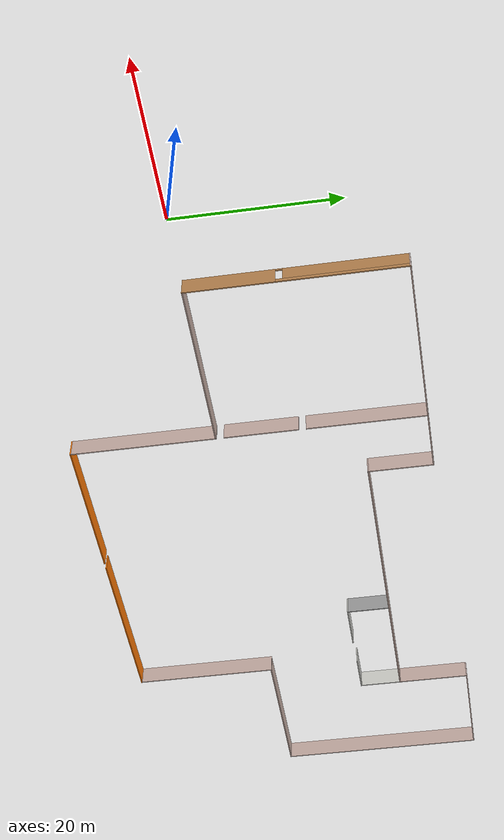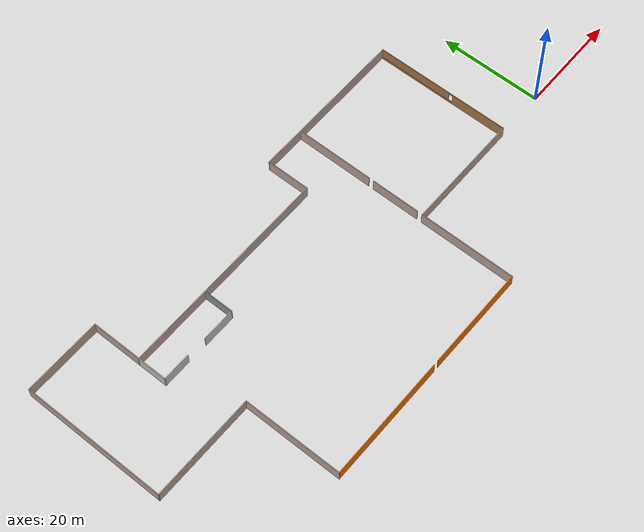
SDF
<?xml version='1.0'?>
<sdf version='1.6'>
  <model name='mybuilding'>
    <pose frame=''>-53.6976 4.37644 0 0 -0 0</pose>
    <link name='Wall_11'>
      <collision name='Wall_11_Collision'>
        <geometry>
          <box>
            <size>20.25 0.15 2.5</size>
          </box>
        </geometry>
        <pose frame=''>0 0 1.25 0 -0 0</pose>
      </collision>
      <visual name='Wall_11_Visual'>
        <pose frame=''>0 0 1.25 0 -0 0</pose>
        <geometry>
          <box>
            <size>20.25 0.15 2.5</size>
          </box>
        </geometry>
        <material>
          <script>
            <uri>file://media/materials/scripts/gazebo.material</uri>
            <name>Gazebo/Grey</name>
          </script>
          <ambient>0.760784 0.662745 0.627451 1</ambient>
        </material>
        <meta>
          <layer>0</layer>
        </meta>
      </visual>
      <pose frame=''>-33.475 -4.375 0 0 -0 0</pose>
    </link>
    <link name='Wall_12'>
      <collision name='Wall_12_Collision'>
        <geometry>
          <box>
            <size>19 0.15 2.5</size>
          </box>
        </geometry>
        <pose frame=''>0 0 1.25 0 -0 0</pose>
      </collision>
      <visual name='Wall_12_Visual'>
        <pose frame=''>0 0 1.25 0 -0 0</pose>
        <geometry>
          <box>
            <size>19 0.15 2.5</size>
          </box>
        </geometry>
        <material>
          <script>
            <uri>file://media/materials/scripts/gazebo.material</uri>
            <name>Gazebo/Grey</name>
          </script>
          <ambient>0.760784 0.662745 0.627451 1</ambient>
        </material>
        <meta>
          <layer>0</layer>
        </meta>
      </visual>
      <pose frame=''>-23.425 -13.8 0 0 0 -1.5708</pose>
    </link>
    <link name='Wall_13'>
      <pose frame=''>-1.25 -23.225 0 0 -0 0</pose>
      <visual name='Wall_13_Visual_0'>
        <pose frame=''>-10.377 0 1.25 0 -0 0</pose>
        <geometry>
          <box>
            <size>23.7459 0.15 2.5</size>
          </box>
        </geometry>
        <material>
          <script>
            <uri>file://media/materials/scripts/gazebo.material</uri>
            <name>Gazebo/Grey</name>
          </script>
          <ambient>0.996078 0.47451 0.0196078 1</ambient>
        </material>
        <meta>
          <layer>0</layer>
        </meta>
      </visual>
      <collision name='Wall_13_Collision_0'>
        <geometry>
          <box>
            <size>23.7459 0.15 2.5</size>
          </box>
        </geometry>
        <pose frame=''>-10.377 0 1.25 0 -0 0</pose>
      </collision>
      <visual name='Wall_13_Visual_1'>
        <pose frame=''>12.323 0 1.25 0 -0 0</pose>
        <geometry>
          <box>
            <size>19.8541 0.15 2.5</size>
          </box>
        </geometry>
        <material>
          <script>
            <uri>file://media/materials/scripts/gazebo.material</uri>
            <name>Gazebo/Grey</name>
          </script>
          <ambient>0.996078 0.47451 0.0196078 1</ambient>
        </material>
        <meta>
          <layer>0</layer>
        </meta>
      </visual>
      <collision name='Wall_13_Collision_1'>
        <geometry>
          <box>
            <size>19.8541 0.15 2.5</size>
          </box>
        </geometry>
        <pose frame=''>12.323 0 1.25 0 -0 0</pose>
      </collision>
    </link>
    <link name='Wall_14'>
      <collision name='Wall_14_Collision'>
        <geometry>
          <box>
            <size>18.75 0.15 2.5</size>
          </box>
        </geometry>
        <pose frame=''>0 0 1.25 0 -0 0</pose>
      </collision>
      <visual name='Wall_14_Visual'>
        <pose frame=''>0 0 1.25 0 -0 0</pose>
        <geometry>
          <box>
            <size>18.75 0.15 2.5</size>
          </box>
        </geometry>
        <material>
          <script>
            <uri>file://media/materials/scripts/gazebo.material</uri>
            <name>Gazebo/Grey</name>
          </script>
          <ambient>0.760784 0.662745 0.627451 1</ambient>
        </material>
        <meta>
          <layer>0</layer>
        </meta>
      </visual>
      <pose frame=''>20.925 -13.925 0 0 -0 1.5708</pose>
    </link>
    <link name='Wall_15'>
      <collision name='Wall_15_Collision'>
        <geometry>
          <box>
            <size>22.75 0.15 2.5</size>
          </box>
        </geometry>
        <pose frame=''>0 0 1.25 0 -0 0</pose>
      </collision>
      <visual name='Wall_15_Visual'>
        <pose frame=''>0 0 1.25 0 -0 0</pose>
        <geometry>
          <box>
            <size>22.75 0.15 2.5</size>
          </box>
        </geometry>
        <material>
          <script>
            <uri>file://media/materials/scripts/gazebo.material</uri>
            <name>Gazebo/Grey</name>
          </script>
          <ambient>0.760784 0.662745 0.627451 1</ambient>
        </material>
        <meta>
          <layer>0</layer>
        </meta>
      </visual>
      <pose frame=''>32.225 -4.625 0 0 -0 0</pose>
    </link>
    <link name='Wall_16'>
      <pose frame=''>43.525 8.675 0 0 -0 1.5708</pose>
      <visual name='Wall_16_Visual_0'>
        <pose frame=''>-7.86389 0 1.25 0 -0 0</pose>
        <geometry>
          <box>
            <size>11.0222 0.15 2.5</size>
          </box>
        </geometry>
        <material>
          <script>
            <uri>file://media/materials/scripts/gazebo.material</uri>
            <name>Gazebo/Wood</name>
          </script>
          <ambient>0.760784 0.662745 0.627451 1</ambient>
        </material>
        <meta>
          <layer>0</layer>
        </meta>
      </visual>
      <collision name='Wall_16_Collision_0'>
        <geometry>
          <box>
            <size>11.0222 0.15 2.5</size>
          </box>
        </geometry>
        <pose frame=''>-7.86389 0 1.25 0 -0 0</pose>
      </collision>
      <visual name='Wall_16_Visual_1'>
        <pose frame=''>5.51111 0 0.25 0 -0 0</pose>
        <geometry>
          <box>
            <size>15.7278 0.15 0.5</size>
          </box>
        </geometry>
        <material>
          <script>
            <uri>file://media/materials/scripts/gazebo.material</uri>
            <name>Gazebo/Wood</name>
          </script>
          <ambient>0.760784 0.662745 0.627451 1</ambient>
        </material>
        <meta>
          <layer>0</layer>
        </meta>
      </visual>
      <collision name='Wall_16_Collision_1'>
        <geometry>
          <box>
            <size>15.7278 0.15 0.5</size>
          </box>
        </geometry>
        <pose frame=''>5.51111 0 0.25 0 -0 0</pose>
      </collision>
      <visual name='Wall_16_Visual_2'>
        <pose frame=''>5.91111 0 1.5 0 -0 0</pose>
        <geometry>
          <box>
            <size>14.9278 0.15 2</size>
          </box>
        </geometry>
        <material>
          <script>
            <uri>file://media/materials/scripts/gazebo.material</uri>
            <name>Gazebo/Wood</name>
          </script>
          <ambient>0.760784 0.662745 0.627451 1</ambient>
        </material>
        <meta>
          <layer>0</layer>
        </meta>
      </visual>
      <collision name='Wall_16_Collision_2'>
        <geometry>
          <box>
            <size>14.9278 0.15 2</size>
          </box>
        </geometry>
        <pose frame=''>5.91111 0 1.5 0 -0 0</pose>
      </collision>
      <visual name='Wall_16_Visual_3'>
        <pose frame=''>-1.95278 0 2.375 0 -0 0</pose>
        <geometry>
          <box>
            <size>0.8 0.15 0.25</size>
          </box>
        </geometry>
        <material>
          <script>
            <uri>file://media/materials/scripts/gazebo.material</uri>
            <name>Gazebo/Wood</name>
          </script>
          <ambient>0.760784 0.662745 0.627451 1</ambient>
        </material>
        <meta>
          <layer>0</layer>
        </meta>
      </visual>
      <collision name='Wall_16_Collision_3'>
        <geometry>
          <box>
            <size>0.8 0.15 0.25</size>
          </box>
        </geometry>
        <pose frame=''>-1.95278 0 2.375 0 -0 0</pose>
      </collision>
    </link>
    <link name='Wall_17'>
      <collision name='Wall_17_Collision'>
        <geometry>
          <box>
            <size>31 0.15 2.5</size>
          </box>
        </geometry>
        <pose frame=''>0 0 1.25 0 -0 0</pose>
      </collision>
      <visual name='Wall_17_Visual'>
        <pose frame=''>0 0 1.25 0 -0 0</pose>
        <geometry>
          <box>
            <size>31 0.15 2.5</size>
          </box>
        </geometry>
        <material>
          <script>
            <uri>file://media/materials/scripts/gazebo.material</uri>
            <name>Gazebo/Grey</name>
          </script>
          <ambient>0.760784 0.662745 0.627451 1</ambient>
        </material>
        <meta>
          <layer>0</layer>
        </meta>
      </visual>
      <pose frame=''>28.1 21.975 0 0 -0 3.14159</pose>
    </link>
    <link name='Wall_18'>
      <collision name='Wall_18_Collision'>
        <geometry>
          <box>
            <size>8.5 0.15 2.5</size>
          </box>
        </geometry>
        <pose frame=''>0 0 1.25 0 -0 0</pose>
      </collision>
      <visual name='Wall_18_Visual'>
        <pose frame=''>0 0 1.25 0 -0 0</pose>
        <geometry>
          <box>
            <size>8.5 0.15 2.5</size>
          </box>
        </geometry>
        <material>
          <script>
            <uri>file://media/materials/scripts/gazebo.material</uri>
            <name>Gazebo/Grey</name>
          </script>
          <ambient>0.760784 0.662745 0.627451 1</ambient>
        </material>
        <meta>
          <layer>0</layer>
        </meta>
      </visual>
      <pose frame=''>12.675 17.8 0 0 0 -1.5708</pose>
    </link>
    <link name='Wall_19'>
      <collision name='Wall_19_Collision'>
        <geometry>
          <box>
            <size>41.5 0.15 2.5</size>
          </box>
        </geometry>
        <pose frame=''>0 0 1.25 0 -0 0</pose>
      </collision>
      <visual name='Wall_19_Visual'>
        <pose frame=''>0 0 1.25 0 -0 0</pose>
        <geometry>
          <box>
            <size>41.5 0.15 2.5</size>
          </box>
        </geometry>
        <material>
          <script>
            <uri>file://media/materials/scripts/gazebo.material</uri>
            <name>Gazebo/Grey</name>
          </script>
          <ambient>0.760784 0.662745 0.627451 1</ambient>
        </material>
        <meta>
          <layer>0</layer>
        </meta>
      </visual>
      <pose frame=''>-8 13.625 0 0 -0 3.14159</pose>
    </link>
    <link name='Wall_20'>
      <collision name='Wall_20_Collision'>
        <geometry>
          <box>
            <size>9.75 0.15 2.5</size>
          </box>
        </geometry>
        <pose frame=''>0 0 1.25 0 -0 0</pose>
      </collision>
      <visual name='Wall_20_Visual'>
        <pose frame=''>0 0 1.25 0 -0 0</pose>
        <geometry>
          <box>
            <size>9.75 0.15 2.5</size>
          </box>
        </geometry>
        <material>
          <script>
            <uri>file://media/materials/scripts/gazebo.material</uri>
            <name>Gazebo/Grey</name>
          </script>
          <ambient>0.760784 0.662745 0.627451 1</ambient>
        </material>
        <meta>
          <layer>0</layer>
        </meta>
      </visual>
      <pose frame=''>-28.675 18.425 0 0 -0 1.5708</pose>
    </link>
    <link name='Wall_25'>
      <collision name='Wall_25_Collision'>
        <geometry>
          <box>
            <size>14.75 0.15 2.5</size>
          </box>
        </geometry>
        <pose frame=''>0 0 1.25 0 -0 0</pose>
      </collision>
      <visual name='Wall_25_Visual'>
        <pose frame=''>0 0 1.25 0 -0 0</pose>
        <geometry>
          <box>
            <size>14.75 0.15 2.5</size>
          </box>
        </geometry>
        <material>
          <script>
            <uri>file://media/materials/scripts/gazebo.material</uri>
            <name>Gazebo/Grey</name>
          </script>
          <ambient>0.760784 0.662745 0.627451 1</ambient>
        </material>
        <meta>
          <layer>0</layer>
        </meta>
      </visual>
      <pose frame=''>-35.975 23.225 0 0 -0 3.14159</pose>
    </link>
    <link name='Wall_28'>
      <collision name='Wall_28_Collision'>
        <geometry>
          <box>
            <size>27.75 0.15 2.5</size>
          </box>
        </geometry>
        <pose frame=''>0 0 1.25 0 -0 0</pose>
      </collision>
      <visual name='Wall_28_Visual'>
        <pose frame=''>0 0 1.25 0 -0 0</pose>
        <geometry>
          <box>
            <size>27.75 0.15 2.5</size>
          </box>
        </geometry>
        <material>
          <script>
            <uri>file://media/materials/scripts/gazebo.material</uri>
            <name>Gazebo/Grey</name>
          </script>
          <ambient>0.760784 0.662745 0.627451 1</ambient>
        </material>
        <meta>
          <layer>0</layer>
        </meta>
      </visual>
      <pose frame=''>-43.525 9.425 0 0 -0 1.5708</pose>
    </link>
    <link name='Wall_30'>
      <pose frame=''>20.925 8.675 0 0 -0 1.5708</pose>
      <visual name='Wall_30_Visual_0'>
        <pose frame=''>-13.2777 0 1.25 0 -0 0</pose>
        <geometry>
          <box>
            <size>0.194643 0.15 2.5</size>
          </box>
        </geometry>
        <material>
          <script>
            <uri>file://media/materials/scripts/gazebo.material</uri>
            <name>Gazebo/Grey</name>
          </script>
          <ambient>0.760784 0.662745 0.627451 1</ambient>
        </material>
        <meta>
          <layer>0</layer>
        </meta>
      </visual>
      <collision name='Wall_30_Collision_0'>
        <geometry>
          <box>
            <size>0.194643 0.15 2.5</size>
          </box>
        </geometry>
        <pose frame=''>-13.2777 0 1.25 0 -0 0</pose>
      </collision>
      <visual name='Wall_30_Visual_1'>
        <pose frame=''>-7.53801 0 1.25 0 -0 0</pose>
        <geometry>
          <box>
            <size>9.4847 0.15 2.5</size>
          </box>
        </geometry>
        <material>
          <script>
            <uri>file://media/materials/scripts/gazebo.material</uri>
            <name>Gazebo/Grey</name>
          </script>
          <ambient>0.760784 0.662745 0.627451 1</ambient>
        </material>
        <meta>
          <layer>0</layer>
        </meta>
      </visual>
      <collision name='Wall_30_Collision_1'>
        <geometry>
          <box>
            <size>9.4847 0.15 2.5</size>
          </box>
        </geometry>
        <pose frame=''>-7.53801 0 1.25 0 -0 0</pose>
      </collision>
      <visual name='Wall_30_Visual_2'>
        <pose frame=''>5.73967 0 1.25 0 -0 0</pose>
        <geometry>
          <box>
            <size>15.2707 0.15 2.5</size>
          </box>
        </geometry>
        <material>
          <script>
            <uri>file://media/materials/scripts/gazebo.material</uri>
            <name>Gazebo/Grey</name>
          </script>
          <ambient>0.760784 0.662745 0.627451 1</ambient>
        </material>
        <meta>
          <layer>0</layer>
        </meta>
      </visual>
      <collision name='Wall_30_Collision_2'>
        <geometry>
          <box>
            <size>15.2707 0.15 2.5</size>
          </box>
        </geometry>
        <pose frame=''>5.73967 0 1.25 0 -0 0</pose>
      </collision>
    </link>
    <link name='Wall_32'>
      <collision name='Wall_32_Collision'>
        <geometry>
          <box>
            <size>5.75 0.15 2.5</size>
          </box>
        </geometry>
        <pose frame=''>0 0 1.25 0 -0 0</pose>
      </collision>
      <visual name='Wall_32_Visual'>
        <pose frame=''>0 0 1.25 0 -0 0</pose>
        <geometry>
          <box>
            <size>5.75 0.15 2.5</size>
          </box>
        </geometry>
        <material>
          <script>
            <uri>file://media/materials/scripts/gazebo.material</uri>
            <name>Gazebo/CeilingTiled</name>
          </script>
          <ambient>1 1 1 1</ambient>
        </material>
        <meta>
          <layer>0</layer>
        </meta>
      </visual>
      <pose frame=''>-28.675 10.825 0 0 0 -1.5708</pose>
    </link>
    <link name='Wall_36'>
      <collision name='Wall_36_Collision'>
        <geometry>
          <box>
            <size>5.5 0.15 2.5</size>
          </box>
        </geometry>
        <pose frame=''>0 0 1.25 0 -0 0</pose>
      </collision>
      <visual name='Wall_36_Visual'>
        <pose frame=''>0 0 1.25 0 -0 0</pose>
        <geometry>
          <box>
            <size>5.5 0.15 2.5</size>
          </box>
        </geometry>
        <material>
          <script>
            <uri>file://media/materials/scripts/gazebo.material</uri>
            <name>Gazebo/CeilingTiled</name>
          </script>
          <ambient>1 1 1 1</ambient>
        </material>
        <meta>
          <layer>0</layer>
        </meta>
      </visual>
      <pose frame=''>-26 8.025 0 0 -0 0</pose>
    </link>
    <link name='Wall_43'>
      <collision name='Wall_43_Collision'>
        <geometry>
          <box>
            <size>5.75 0.15 2.5</size>
          </box>
        </geometry>
        <pose frame=''>0 0 1.25 0 -0 0</pose>
      </collision>
      <visual name='Wall_43_Visual'>
        <pose frame=''>0 0 1.25 0 -0 0</pose>
        <geometry>
          <box>
            <size>5.75 0.15 2.5</size>
          </box>
        </geometry>
        <material>
          <script>
            <uri>file://media/materials/scripts/gazebo.material</uri>
            <name>Gazebo/Grey</name>
          </script>
          <ambient>1 1 1 1</ambient>
        </material>
        <meta>
          <layer>0</layer>
        </meta>
      </visual>
      <pose frame=''>-12.9596 10.7124 0 0 0 -1.5708</pose>
    </link>
    <link name='Wall_45'>
      <collision name='Wall_45_Collision'>
        <geometry>
          <box>
            <size>6.5 0.15 2.5</size>
          </box>
        </geometry>
        <pose frame=''>0 0 1.25 0 -0 0</pose>
      </collision>
      <visual name='Wall_45_Visual'>
        <pose frame=''>0 0 1.25 0 -0 0</pose>
        <geometry>
          <box>
            <size>6.5 0.15 2.5</size>
          </box>
        </geometry>
        <material>
          <script>
            <uri>file://media/materials/scripts/gazebo.material</uri>
            <name>Gazebo/CeilingTiled</name>
          </script>
          <ambient>1 1 1 1</ambient>
        </material>
        <meta>
          <layer>0</layer>
        </meta>
      </visual>
      <pose frame=''>-16.1346 7.91242 0 0 -0 3.14159</pose>
    </link>
    <static>1</static>
  </model>
</sdf>
